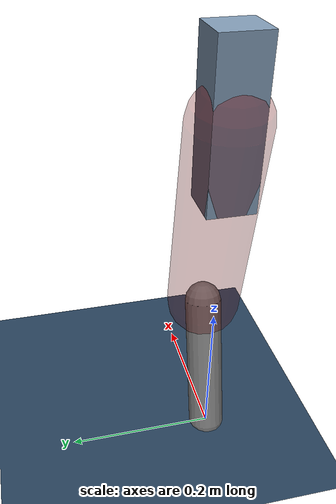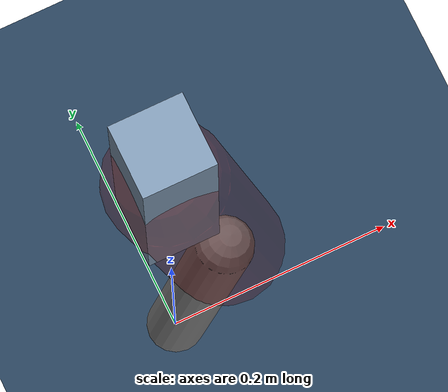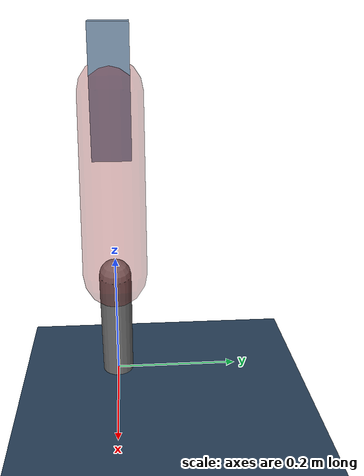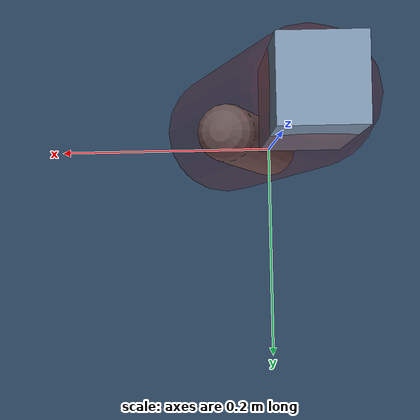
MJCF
<mujoco model="Hopper2D">
	<compiler inertiafromgeom="true" angle="radian" />
	<option timestep="0.001" integrator="implicit" cone="elliptic" solver="Newton" tolerance="1e-10" />

	<default>
		<geom contype="1" conaffinity="1" condim="3" friction="2 0.005 0.0001" solref="0.005 1" />
		<joint limited="true" damping="0.1" />
	</default>

	<asset>
		<texture name="skybox" type="skybox" builtin="gradient" rgb1=".4 .6 .8" rgb2="0 0 0" width="800" height="800" />
		<texture name="grid" type="2d" builtin="checker" rgb1=".1 .2 .3" rgb2=".2 .3 .4" width="300" height="300" mark="edge" markrgb=".2 .3 .4" />
		<material name="ground" texture="grid" texrepeat="1 1" texuniform="true" reflectance="0.1" />
		<material name="leg" rgba="0.5 0.6 0.7 1" />
	</asset>

	<worldbody>

		<geom name="floor" type="plane" size="5 5 0.25" material="ground" />

		<light directional="false" diffuse="0.8 0.8 0.8" specular="0.3 0.3 0.3" pos="0 0 2" dir="0 0 -1" />
		<light mode="targetbodycom" target="base" directional="false" diffuse="0.8 0.8 0.8" specular="0.3 0.3 0.3" pos="0 0 2" dir="0 0 -1" />

		<camera name="fixed" pos="0 -2 1" xyaxes="1 0 0 0 0 1" />
		<camera name="tracking" mode="trackcom" pos="0 -3 1" />

		<body name="root" pos="0 0 0.46955896055718027">
			<joint name="slide_x" type="slide" axis="1 0 0" range="-100 100" />
			<joint name="slide_z" type="slide" axis="0 0 1" range="0 10" />

			<body name="base" pos="0 0 0">
				<geom name="torso" type="box" size="0.03 0.03 0.1" mass="2.147" material="leg" />

				<body name="link1" pos="0 0 0" euler="0 1.3986629250592642 0">
					<joint type="hinge" axis="0 -1 0" pos="0 0 0" name="hinge1" limited="true" range="-3.14 3.14" stiffness="0" damping="0.1" />
					<geom name="thigh" type="capsule" fromto="0 0 0 0.2801520661581255 0 0" size="0.05" rgba="0.5 0 0 0.3" mass="0.9355105786269388" />

					<body name="link2" pos="0.2801520661581255 0 0" euler="0 0.4151609647999498 0">
						<joint type="hinge" axis="0 -1 0" pos="0 0 0" name="hinge2" limited="true" range="-3.14 3.14" stiffness="0" damping="0.1" />
						<geom name="shank" type="capsule" fromto="0 0 0 0.1994068943990548 0 0" size="0.025" mass="0.4004255155192438" />

					</body>
				</body>
			</body>
		</body>
	</worldbody>

	<actuator>
		<motor name="torque1" joint="hinge1" ctrlrange="-62.30206738670167 62.30206738670167" ctrllimited="true" gear="1" />
		<motor name="torque2" joint="hinge2" ctrlrange="-78.28272497899539 78.28272497899539" ctrllimited="true" gear="1" />
	</actuator>
</mujoco>
